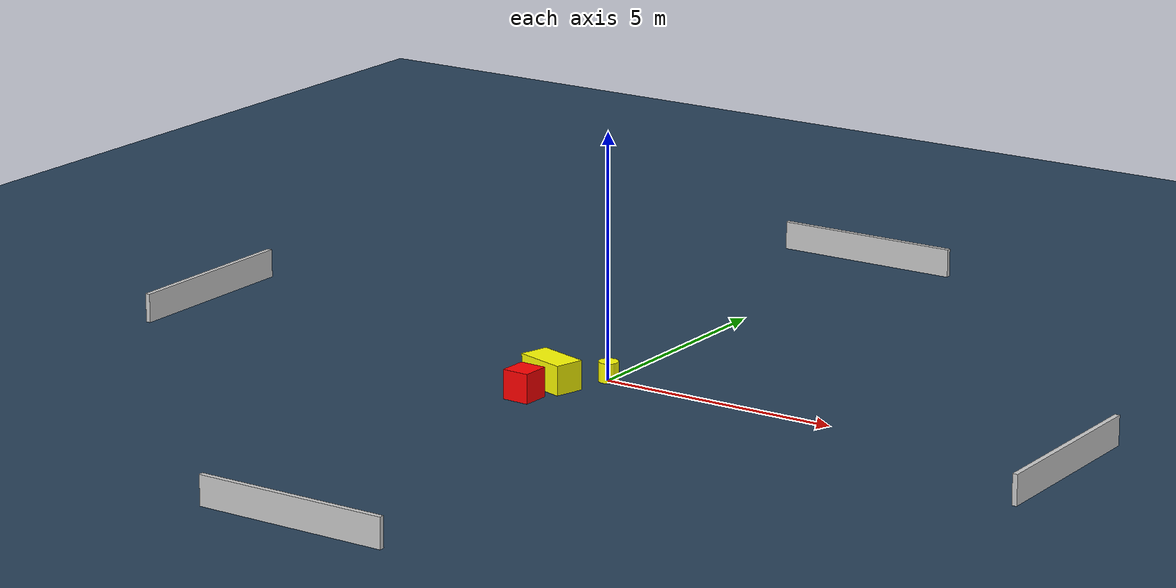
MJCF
<?xml version="1.0" ?>
<mujoco model="generated_environment">
  <option timestep="0.01" integrator="RK4" cone="elliptic"/>
  <default>
    <geom density="1"/>
  </default>
  <asset>
    <texture builtin="gradient" height="3072" name="skybox" rgb1="0.3 0.5 0.7" rgb2="0 0 0" type="skybox" width="512"/>
    <texture builtin="checker" height="300" name="groundplane" rgb1="0.2 0.3 0.4" rgb2="0.1 0.2 0.3" type="2d" width="300"/>
    <material name="groundplane" reflectance="0.2" texrepeat="5 5" texture="groundplane"/>
  </asset>
  <worldbody>
    <light dir="0 0 -1" directional="true" pos="0 0 1.5"/>
    <geom condim="3" friction="0.5 0.005 0.001" material="groundplane" name="floor" pos="0 0 0" size="0 0 0.05" type="plane"/>
    <body name="walls">
      <geom name="wall_1" condim="4" pos="-10.0 0.0 0.3" rgba="0.800000011920929 0.800000011920929 0.800000011920929 1.0" size="0.05 2.0 0.3" type="box"/>
      <geom name="wall_2" condim="4" pos="10.0 0.0 0.3" rgba="0.800000011920929 0.800000011920929 0.800000011920929 1.0" size="0.05 2.0 0.3" type="box"/>
      <geom name="wall_3" condim="4" pos="0.0 -10.0 0.3" rgba="0.800000011920929 0.800000011920929 0.800000011920929 1.0" size="2.0 0.05 0.3" type="box"/>
      <geom name="wall_4" condim="4" pos="0.0 10.0 0.3" rgba="0.800000011920929 0.800000011920929 0.800000011920929 1.0" size="2.0 0.05 0.3" type="box"/>
    </body>
    <body name="robot">
      <joint name="joint_x" type="slide" pos="0 0 0" axis="1 0 0"/>
      <joint name="joint_y" type="slide" pos="0 0 0" axis="0 1 0"/>
      <geom name="robot" type="cylinder" pos="0.0 0.0 0.2" size="0.2 0.2 0.0" mass="5.0" friction="1.0 0.005 0.0001" condim="4" rgba="1.0 1.0 0.0 1.0"/>
    </body>
    <body name="obstacle_1_movable">
      <geom name="obstacle_1_movable" condim="4" pos="-0.7263755270417991 -0.9068935144940178 0.3" euler="0 0 163.9288471604616" friction="0.0 0.005 0.001" rgba="1.0 1.0 0.0 1.0" size="0.5458709619766784 0.30258745688212296 0.3" type="box" mass="0.1"/>
      <joint type="free"/>
    </body>
    <body name="obstacle_2_static">
      <geom name="obstacle_2_static" condim="4" pos="-0.7515090236721715 -1.7947189464301256 0.3" euler="0 0 267.7657345284734" friction="0.0 0.005 0.001" rgba="1.0 0.0 0.0 1.0" size="0.2889457694070858 0.28246795886157827 0.3" type="box"/>
    </body>
  </worldbody>
  <actuator>
    <motor name="actuator_x" joint="joint_x" gear="1" ctrlrange="-1 1"/>
    <motor name="actuator_y" joint="joint_y" gear="1" ctrlrange="-1 1"/>
  </actuator>
</mujoco>
